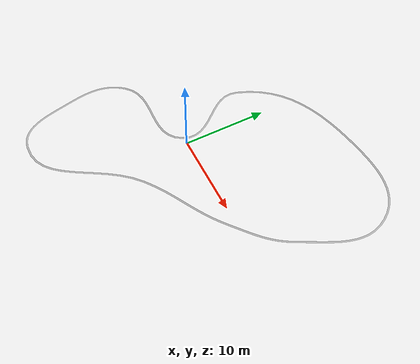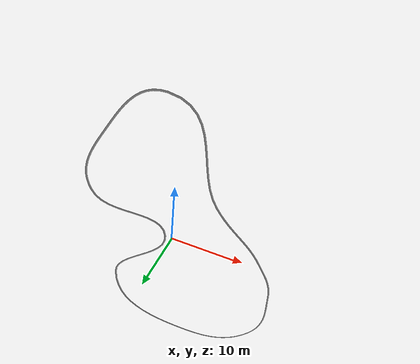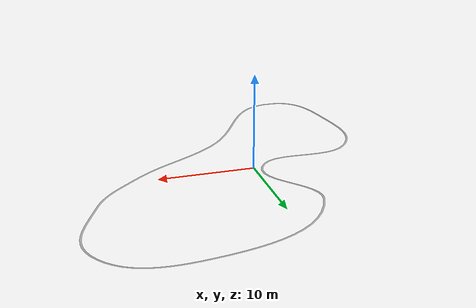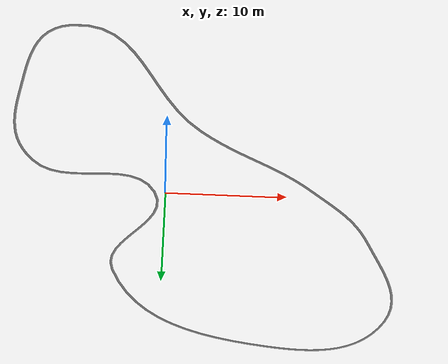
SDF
<?xml version="1.0"?>
<sdf version="1.5">
    <model name="road">
        <static>true</static>
        <link name="link">
            <collision name="collision">
                <pose>0 0 0 0 0 0</pose>
                <geometry>
                    <mesh>
                        <uri>model://road_3_additional/meshes/road_3.dae</uri>
                    </mesh>
                </geometry>
            </collision>
            <visual name="visual">

              <pose>0 0 0 0 0 0</pose>
              <geometry>
              <mesh>
                 <uri>model://road_3_additional/meshes/road_3.dae</uri>
              </mesh>
              </geometry>
             </visual>

        </link>
    </model>
</sdf>
